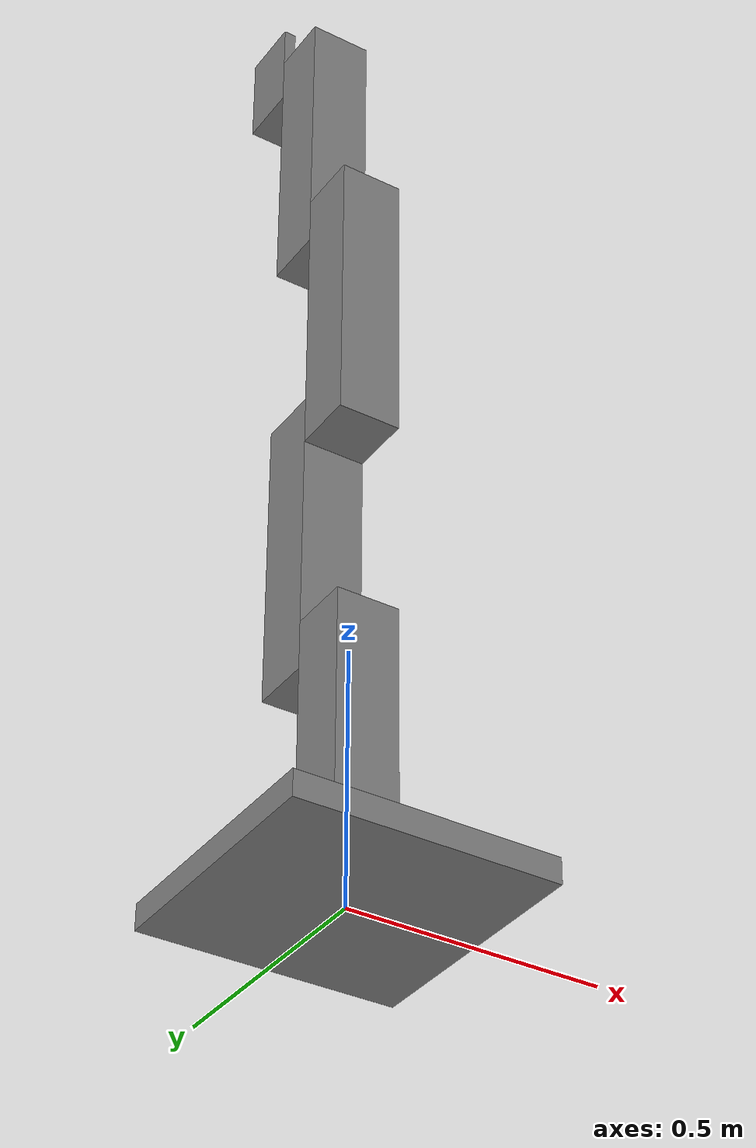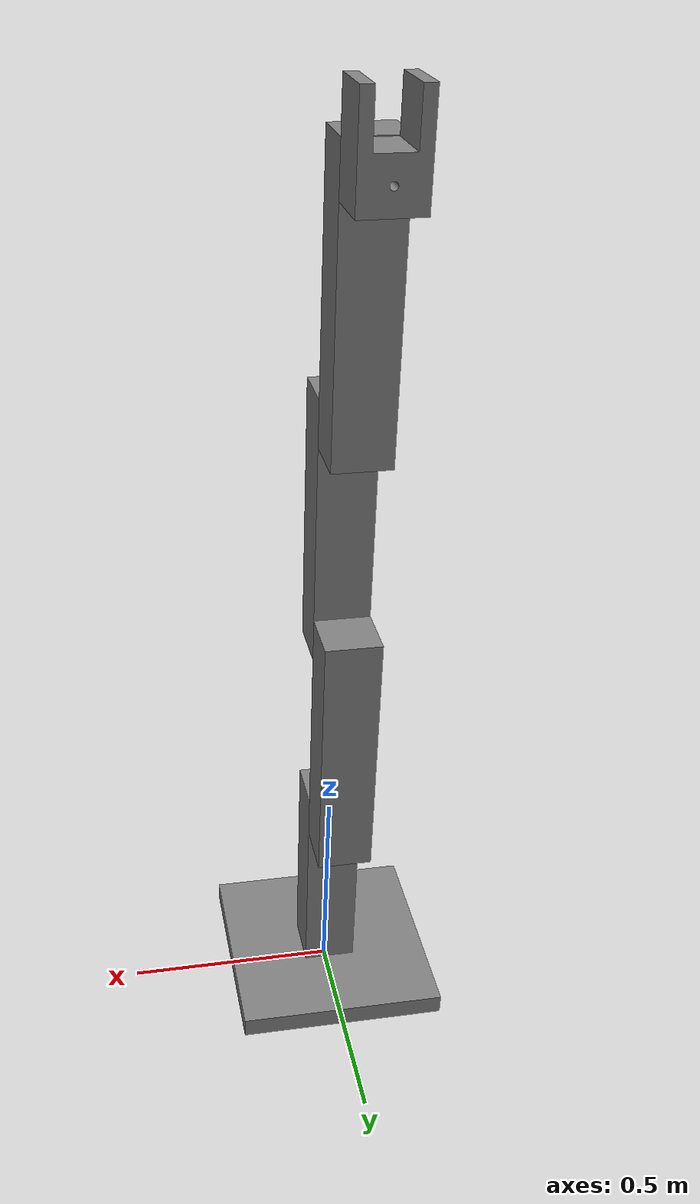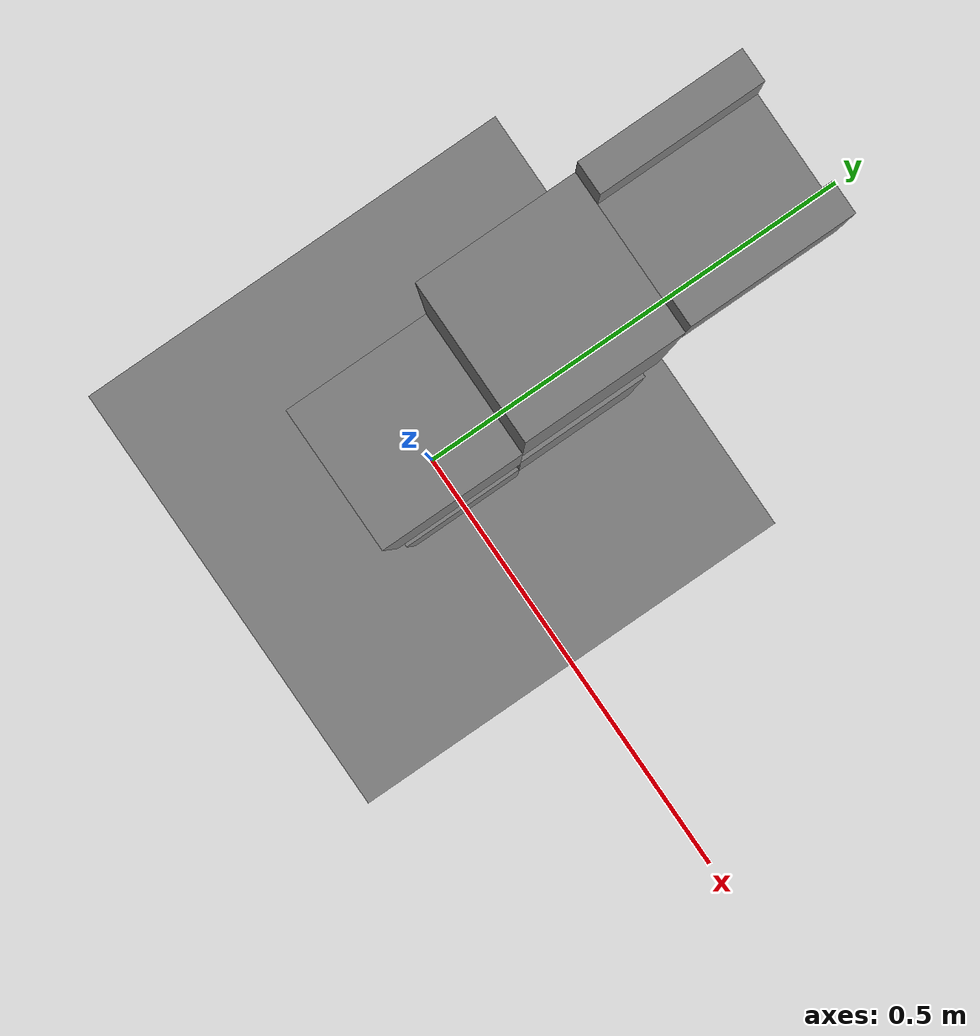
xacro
<?xml version='1.0'?>
<robot xmlns:xacro="http://www.ros.org/wiki/xacro" name="robot_arm_seb">

    <!-- PROPIEDADES -->
    <!-- Brazo -->
    <xacro:property name="armLz" value="${120/factor}" />
    <xacro:property name="armL1z" value="${110/factor}" />
    <xacro:property name="armJz" value="${100/factor}" />
    <xacro:property name="armLxy" value="${25/factor}" />

    <xacro:property name="m" value="1" />
    <xacro:property name="factor" value="200" />

    <!-- Base -->
    <xacro:property name="bL" value="${100/factor}" />
    <xacro:property name="bH" value="${10/factor}" />

    <!-- Tool -->
    <xacro:property name = "offset_tool" value="${10/factor}" />

    <!-- MACROS / FUNCIONES -->
    <!--Boxes:
    x -> l; y -> w; z -> h -->
    <xacro:macro name="arm_macro" params="p_name p_length p_width p_height p_offset">
        <link name="${p_name}">
            <visual>
                <!-- box geometry -->
                <geometry>
                    <box size="${p_length} ${p_width} ${p_height}" />
                </geometry>
                <!-- Esto mueve la caja desde el centro, no el origen con respecto a la caja-->
                <origin xyz="0 0 ${p_offset}" rpy="0 0 0" />

                <material name="gray">
                    <color rgba="0.5 0.5 0.5 1" />
                </material>

            </visual>

            <inertial>
                <mass value="${m}" />
                <origin xyz="0 0 ${p_height/2}" rpy="0 0 0" />
                <inertia ixx="${1/12*m*(p_height*p_height + p_width*p_width)}" ixy="0" ixz="0"
                    iyy="${1/12*m*(p_length*p_length + p_height*p_height)}" iyz="0"
                    izz="${1/12*m*(p_width*p_width + p_length*p_length)}" />
            </inertial>

            <collision>
                <!-- box geometry -->
                <geometry>
                    <box size="${p_length} ${p_width} ${p_height}" />
                </geometry>
                <origin xyz="0 0 ${p_height/2}" rpy="0 0 0" />
            </collision>
        </link>
    </xacro:macro>

    <xacro:arm_macro p_name="armBase_link"
        p_length="${bL}"
        p_width="${bL}"
        p_height="${bH}"
        p_offset="${bH/2}" />

    <xacro:arm_macro p_name="arm1_link"
        p_length="${armLxy}"
        p_width="${armLxy}"
        p_height="${armL1z}"
        p_offset="${armL1z/2}" />

    <joint name="armBase_arm1_joint" type="fixed">
        <parent link="armBase_link" />
        <child link="arm1_link" />
        <!--Crea
        offsets the child con respecto a parent -->
        <origin xyz="0 0 ${bH/2}" rpy="0 0 0" />
    </joint>

    <xacro:arm_macro p_name="arm2_link"
        p_length="${armLxy}"
        p_width="${armLxy}"
        p_height="${armLz}"
        p_offset="${armLz*0.42}" />

    <joint name="arm1_arm2_joint" type="revolute">
        <parent link="arm1_link" />
        <child link="arm2_link" />
        <origin xyz="0 ${armLxy} ${armJz}" rpy="0 0 0" />
        <axis xyz="0 1 0" />
        <limit effort="1" lower="-1.57" upper="1.57" velocity="1" />
        <dynamics damping="0.1" friction="0.1" />
    </joint>

    <xacro:arm_macro p_name="arm3_link"
        p_length="${armLxy}"
        p_width="${armLxy}"
        p_height="${armLz}"
        p_offset="${armLz*0.42}" />

    <joint name="arm2_arm3_joint" type="revolute">
        <parent link="arm2_link" />
        <child link="arm3_link" />
        <origin xyz="0 ${-armLxy} ${armJz}" rpy="0 0 0" />
        <axis xyz="0 1 0" />
        <limit effort="1" lower="-1.57" upper="1.57" velocity="1" />
        <dynamics damping="0.1" friction="0.1" />
    </joint>

    <xacro:arm_macro p_name="arm4_link"
        p_length="${armLxy}"
        p_width="${armLxy}"
        p_height="${armLz}"
        p_offset="${armLz*0.42}" />

    <joint name="arm3_arm4_joint" type="revolute">
        <parent link="arm3_link" />
        <child link="arm4_link" />
        <origin xyz="0 ${armLxy} ${armJz}" rpy="0 0 0" />
        <axis xyz="0 1 0" />
        <limit effort="1" lower="-1.57" upper="1.57" velocity="1" />
        <dynamics damping="0.1" friction="0.1" />
    </joint>

    <link name="tool_link">
        <visual>
            <!-- mesh -->
            <geometry>
                <mesh filename="package://modelrobot_pkg_seb/model/tool.stl" scale="${1/factor} ${1/factor} ${1/factor}" />
            </geometry>
            <origin xyz="0 0 ${offset_tool}" rpy="0 0 0" />

            <material name="gray">
                <color rgba="0.5 0.5 0.5 1" />
            </material>

        </visual>

        <inertial>
            <mass value="${m}" />
            <origin xyz="0 0 ${offset_tool}" rpy="0 0 0" />
            <inertia ixx="${1/12*m*(40/factor*40/factor + 25/factor*25/factor)}" ixy="0" ixz="0"
                iyy="${1/12*m*(25/factor*25/factor + 40/factor*40/factor)}" iyz="0"
                izz="${1/12*m*(25/factor*25/factor + 25/factor*25/factor)}" />
        </inertial>

        <collision>
            <!-- mesh -->
            <geometry>
                <mesh filename="package://modelrobot_pkg_seb/model/tool.stl" scale="${1/factor} ${1/factor} ${1/factor}"/>
            </geometry>
            <origin xyz="0 0 0" rpy="0 0 0" />
        </collision>
    </link>

    <joint name="arm4_tool_joint" type="revolute">
        <parent link="arm4_link" />
        <child link="tool_link" />
        <origin xyz="0 ${armLxy/2} ${armJz}" rpy="0 0 0" />
        <axis xyz="0 1 0" />
        <limit effort="1" lower="-1.57" upper="1.57" velocity="1" />
        <dynamics damping="0.1" friction="0.1" />
    </joint>

</robot>
